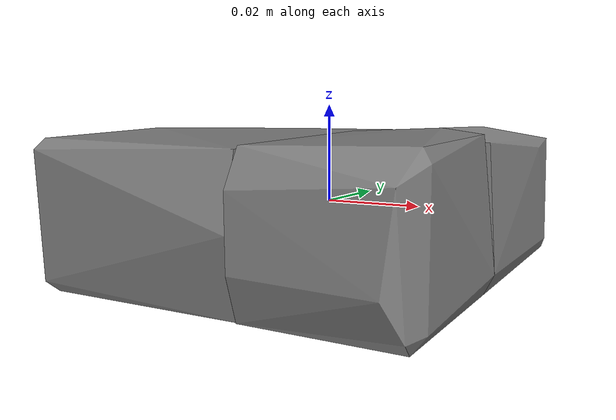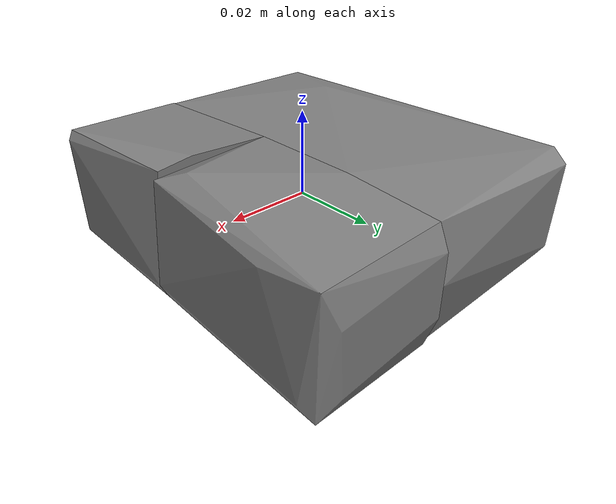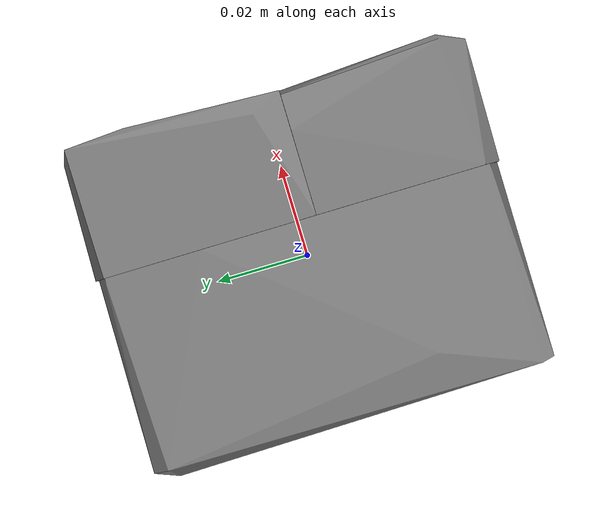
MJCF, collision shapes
<mujoco model="gelatin_box">
  <compiler angle="radian" />

  <asset>
    <mesh name="gelatin_box_visual_mesh" file="gelatin_box/textured.obj" />
    <mesh name="gelatin_box_collision_mesh_0" file="gelatin_box/textured_coacd_0.stl" />
    <mesh name="gelatin_box_collision_mesh_1" file="gelatin_box/textured_coacd_1.stl" />
    <mesh name="gelatin_box_collision_mesh_2" file="gelatin_box/textured_coacd_2.stl" />
    <texture name="gelatin_box_texture" type="2d" file="gelatin_box/texture_map.png" />
    <material name="gelatin_box_material" texture="gelatin_box_texture" />
  </asset>

  <worldbody>
    <body name="gelatin_box" pos="0 0 0" euler="0 0 0">
      <freejoint name="gelatin_box_joint" />
      <geom name="gelatin_box_visual_geom" type="mesh" mesh="gelatin_box_visual_mesh" material="gelatin_box_material" pos="0.0 0.0 0.0" euler="0 0 0" contype="0" conaffinity="0" group="0" />
      <geom name="gelatin_box_collision_geom_0" type="mesh" mesh="gelatin_box_collision_mesh_0" pos="0.0 0.0 0.0" euler="0 0 0" contype="1" conaffinity="1" group="3" />
      <geom name="gelatin_box_collision_geom_1" type="mesh" mesh="gelatin_box_collision_mesh_1" pos="0.0 0.0 0.0" euler="0 0 0" contype="1" conaffinity="1" group="3" />
      <geom name="gelatin_box_collision_geom_2" type="mesh" mesh="gelatin_box_collision_mesh_2" pos="0.0 0.0 0.0" euler="0 0 0" contype="1" conaffinity="1" group="3" />
      <inertial pos="0 0 0" euler="0 0 0" mass="0.097" diaginertia="0.001 0.001 0.001" />
    </body>
  </worldbody>
</mujoco>
